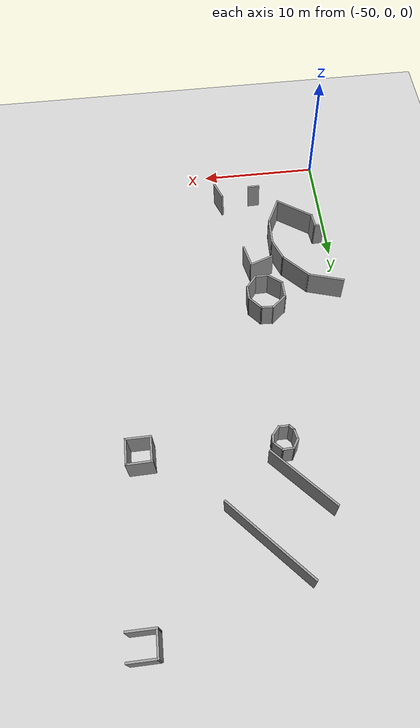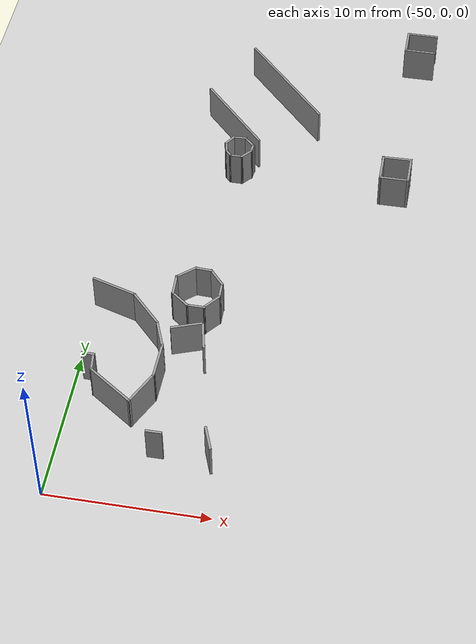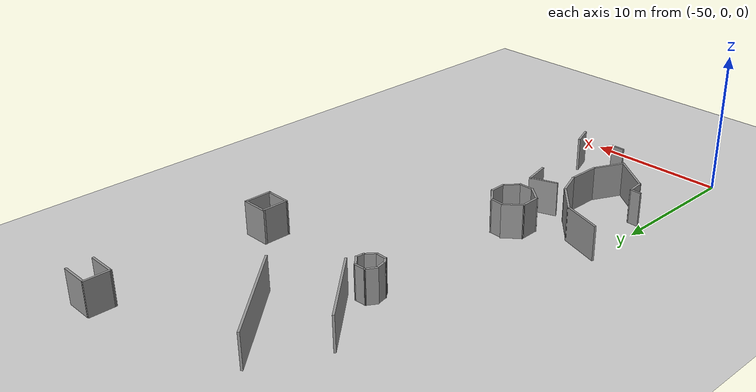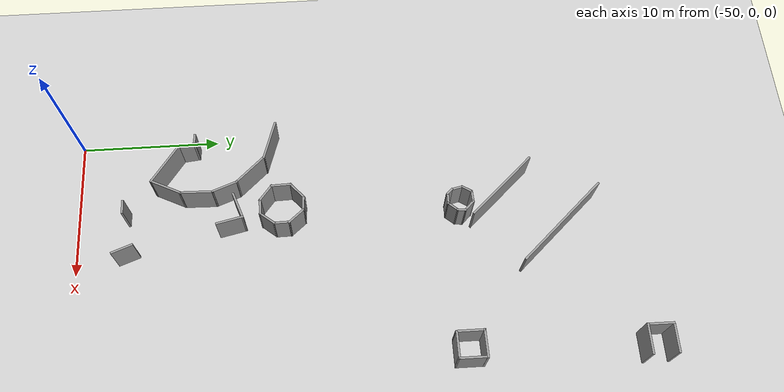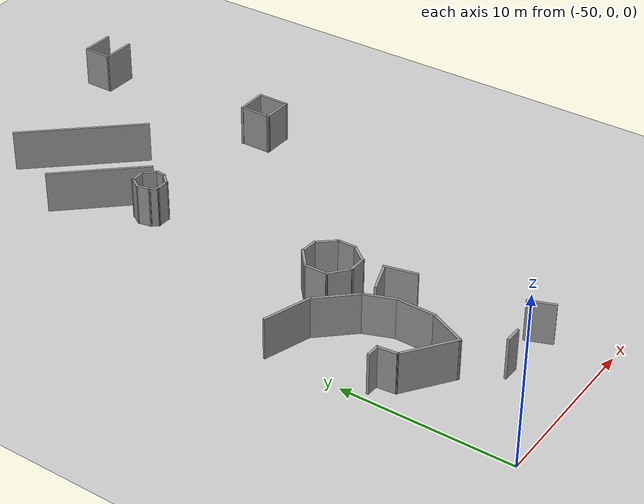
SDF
<sdf version="1.6">
 <world name="default">
  <model name="ground_plane">
   <static>1</static>
   <link name="link">
    <collision name="collision">
     <geometry><plane><normal>0 0 1</normal><size>100 100</size></plane></geometry>
     <surface><friction><ode><mu>100</mu><mu2>50</mu2></ode></friction></surface>
    </collision>
    <visual name="visual">
     <cast_shadows>0</cast_shadows>
     <geometry><plane><normal>0 0 1</normal><size>100 100</size></plane></geometry>
     <material>
      <script><uri>file://media/materials/scripts/gazebo.material</uri><name>Gazebo/Grey</name></script>
     </material>
    </visual>
   </link>
  </model>
  <model name="mall_new_reduce_size">
   <pose>-6.8092 7.5529 0 0 -0 0</pose>
   <link name="Wall_106">
    <collision name="Wall_106_Collision">
     <geometry><box><size>0.88293 0.15 2.5</size></box></geometry>
     <pose>0 0 1.25 0 -0 0</pose>
    </collision>
    <visual name="Wall_106_Visual">
     <pose>0 0 1.25 0 -0 0</pose>
     <geometry><box><size>0.88293 0.15 2.5</size></box></geometry>
     <material>
      <script><uri>file://media/materials/scripts/gazebo.material</uri><name>Gazebo/Grey</name></script>
      <ambient>1 1 1 1</ambient>
     </material>
     <meta><layer>0</layer></meta>
    </visual>
    <pose>-37.2247 20.3731 0 0 -0 1.00343</pose>
   </link>
   <link name="Wall_107">
    <collision name="Wall_107_Collision">
     <geometry><box><size>0.940533 0.15 2.5</size></box></geometry>
     <pose>0 0 1.25 0 -0 0</pose>
    </collision>
    <visual name="Wall_107_Visual">
     <pose>0 0 1.25 0 -0 0</pose>
     <geometry><box><size>0.940533 0.15 2.5</size></box></geometry>
     <material>
      <script><uri>file://media/materials/scripts/gazebo.material</uri><name>Gazebo/Grey</name></script>
      <ambient>1 1 1 1</ambient>
     </material>
     <meta><layer>0</layer></meta>
    </visual>
    <pose>-36.633 20.7072 0 0 -0 0.04939</pose>
   </link>
   <link name="Wall_108">
    <collision name="Wall_108_Collision">
     <geometry><box><size>1.04338 0.15 2.5</size></box></geometry>
     <pose>0 0 1.25 0 -0 0</pose>
    </collision>
    <visual name="Wall_108_Visual">
     <pose>0 0 1.25 0 -0 0</pose>
     <geometry><box><size>1.04338 0.15 2.5</size></box></geometry>
     <material>
      <script><uri>file://media/materials/scripts/gazebo.material</uri><name>Gazebo/Grey</name></script>
      <ambient>1 1 1 1</ambient>
     </material>
     <meta><layer>0</layer></meta>
    </visual>
    <pose>-35.9265 20.4122 0 0 -0 -0.780985</pose>
   </link>
   <link name="Wall_109">
    <collision name="Wall_109_Collision">
     <geometry><box><size>0.676427 0.15 2.5</size></box></geometry>
     <pose>0 0 1.25 0 -0 0</pose>
    </collision>
    <visual name="Wall_109_Visual">
     <pose>0 0 1.25 0 -0 0</pose>
     <geometry><box><size>0.676427 0.15 2.5</size></box></geometry>
     <material>
      <script><uri>file://media/materials/scripts/gazebo.material</uri><name>Gazebo/Grey</name></script>
      <ambient>1 1 1 1</ambient>
     </material>
     <meta><layer>0</layer></meta>
    </visual>
    <pose>-35.6455 19.8364 0 0 -0 -1.68757</pose>
   </link>
   <link name="Wall_110">
    <collision name="Wall_110_Collision">
     <geometry><box><size>0.945582 0.15 2.5</size></box></geometry>
     <pose>0 0 1.25 0 -0 0</pose>
    </collision>
    <visual name="Wall_110_Visual">
     <pose>0 0 1.25 0 -0 0</pose>
     <geometry><box><size>0.945582 0.15 2.5</size></box></geometry>
     <material>
      <script><uri>file://media/materials/scripts/gazebo.material</uri><name>Gazebo/Grey</name></script>
      <ambient>1 1 1 1</ambient>
     </material>
     <meta><layer>0</layer></meta>
    </visual>
    <pose>-35.9305 19.2738 0 0 -0 -2.28278</pose>
   </link>
   <link name="Wall_111">
    <collision name="Wall_111_Collision">
     <geometry><box><size>0.906136 0.15 2.5</size></box></geometry>
     <pose>0 0 1.25 0 -0 0</pose>
    </collision>
    <visual name="Wall_111_Visual">
     <pose>0 0 1.25 0 -0 0</pose>
     <geometry><box><size>0.906136 0.15 2.5</size></box></geometry>
     <material>
      <script><uri>file://media/materials/scripts/gazebo.material</uri><name>Gazebo/Grey</name></script>
      <ambient>1 1 1 1</ambient>
     </material>
     <meta><layer>0</layer></meta>
    </visual>
    <pose>-36.5684 18.981 0 0 -0 3.13422</pose>
   </link>
   <link name="Wall_112">
    <collision name="Wall_112_Collision">
     <geometry><box><size>0.599997 0.15 2.5</size></box></geometry>
     <pose>0 0 1.25 0 -0 0</pose>
    </collision>
    <visual name="Wall_112_Visual">
     <pose>0 0 1.25 0 -0 0</pose>
     <geometry><box><size>0.599997 0.15 2.5</size></box></geometry>
     <material>
      <script><uri>file://media/materials/scripts/gazebo.material</uri><name>Gazebo/Grey</name></script>
      <ambient>1 1 1 1</ambient>
     </material>
     <meta><layer>0</layer></meta>
    </visual>
    <pose>-37.1032 19.1505 0 0 -0 2.30701</pose>
   </link>
   <link name="Wall_116">
    <collision name="Wall_116_Collision">
     <geometry><box><size>0.795039 0.15 2.5</size></box></geometry>
     <pose>0 0 1.25 0 -0 0</pose>
    </collision>
    <visual name="Wall_116_Visual">
     <pose>0 0 1.25 0 -0 0</pose>
     <geometry><box><size>0.795039 0.15 2.5</size></box></geometry>
     <material>
      <script><uri>file://media/materials/scripts/gazebo.material</uri><name>Gazebo/Grey</name></script>
      <ambient>1 1 1 1</ambient>
     </material>
     <meta><layer>0</layer></meta>
    </visual>
    <pose>-37.3234 19.6378 0 0 -0 1.78689</pose>
   </link>
   <link name="Wall_120">
    <collision name="Wall_120_Collision">
     <geometry><box><size>2 0.15 2.5</size></box></geometry>
     <pose>0 0 1.25 0 -0 0</pose>
    </collision>
    <visual name="Wall_120_Visual">
     <pose>0 0 1.25 0 -0 0</pose>
     <geometry><box><size>2 0.15 2.5</size></box></geometry>
     <material>
      <script><uri>file://media/materials/scripts/gazebo.material</uri><name>Gazebo/Grey</name></script>
      <ambient>1 1 1 1</ambient>
     </material>
     <meta><layer>0</layer></meta>
    </visual>
    <pose>-26.9558 19.541 0 0 -0 -1.5708</pose>
   </link>
   <link name="Wall_121">
    <collision name="Wall_121_Collision">
     <geometry><box><size>1.9668 0.15 2.5</size></box></geometry>
     <pose>0 0 1.25 0 -0 0</pose>
    </collision>
    <visual name="Wall_121_Visual">
     <pose>0 0 1.25 0 -0 0</pose>
     <geometry><box><size>1.9668 0.15 2.5</size></box></geometry>
     <material>
      <script><uri>file://media/materials/scripts/gazebo.material</uri><name>Gazebo/Grey</name></script>
      <ambient>1 1 1 1</ambient>
     </material>
     <meta><layer>0</layer></meta>
    </visual>
    <pose>-26.0474 18.619 0 0 -0 0.003382</pose>
   </link>
   <link name="Wall_122">
    <collision name="Wall_122_Collision">
     <geometry><box><size>2.02653 0.15 2.5</size></box></geometry>
     <pose>0 0 1.25 0 -0 0</pose>
    </collision>
    <visual name="Wall_122_Visual">
     <pose>0 0 1.25 0 -0 0</pose>
     <geometry><box><size>2.02653 0.15 2.5</size></box></geometry>
     <material>
      <script><uri>file://media/materials/scripts/gazebo.material</uri><name>Gazebo/Grey</name></script>
      <ambient>1 1 1 1</ambient>
     </material>
     <meta><layer>0</layer></meta>
    </visual>
    <pose>-25.1383 19.554 0 0 -0 1.57003</pose>
   </link>
   <link name="Wall_123">
    <collision name="Wall_123_Collision">
     <geometry><box><size>1.99983 0.15 2.5</size></box></geometry>
     <pose>0 0 1.25 0 -0 0</pose>
    </collision>
    <visual name="Wall_123_Visual">
     <pose>0 0 1.25 0 -0 0</pose>
     <geometry><box><size>1.99983 0.15 2.5</size></box></geometry>
     <material>
      <script><uri>file://media/materials/scripts/gazebo.material</uri><name>Gazebo/Grey</name></script>
      <ambient>1 1 1 1</ambient>
     </material>
     <meta><layer>0</layer></meta>
    </visual>
    <pose>-26.056 20.4954 0 0 -0 -3.12426</pose>
   </link>
   <link name="Wall_17">
    <collision name="Wall_17_Collision">
     <geometry><box><size>6.11812 0.15 2.5</size></box></geometry>
     <pose>0 0 1.25 0 -0 0</pose>
    </collision>
    <visual name="Wall_17_Visual">
     <pose>0 0 1.25 0 -0 0</pose>
     <geometry><box><size>6.11812 0.15 2.5</size></box></geometry>
     <material>
      <script><uri>file://media/materials/scripts/gazebo.material</uri><name>Gazebo/Grey</name></script>
      <ambient>1 1 1 1</ambient>
     </material>
     <meta><layer>0</layer></meta>
    </visual>
    <pose>-37.3721 22.8899 0 0 -0 -0.823537</pose>
   </link>
   <link name="Wall_23">
    <collision name="Wall_23_Collision">
     <geometry><box><size>8.04183 0.15 2.5</size></box></geometry>
     <pose>0 0 1.25 0 -0 0</pose>
    </collision>
    <visual name="Wall_23_Visual">
     <pose>0 0 1.25 0 -0 0</pose>
     <geometry><box><size>8.04183 0.15 2.5</size></box></geometry>
     <material>
      <script><uri>file://media/materials/scripts/gazebo.material</uri><name>Gazebo/Grey</name></script>
      <ambient>1 1 1 1</ambient>
     </material>
     <meta><layer>0</layer></meta>
    </visual>
    <pose>-34.4403 26.7968 0 0 -0 -0.828664</pose>
   </link>
   <link name="Wall_340">
    <collision name="Wall_340_Collision">
     <geometry><box><size>1.61603 0.15 2.5</size></box></geometry>
     <pose>0 0 1.25 0 -0 0</pose>
    </collision>
    <visual name="Wall_340_Visual">
     <pose>0 0 1.25 0 -0 0</pose>
     <geometry><box><size>1.61603 0.15 2.5</size></box></geometry>
     <material>
      <script><uri>file://media/materials/scripts/gazebo.material</uri><name>Gazebo/Grey</name></script>
      <ambient>1 1 1 1</ambient>
     </material>
     <meta><layer>0</layer></meta>
    </visual>
    <pose>-34.1129 -3.77256 0 0 -0 -1.20963</pose>
   </link>
   <link name="Wall_344">
    <collision name="Wall_344_Collision">
     <geometry><box><size>1 0.15 2.5</size></box></geometry>
     <pose>0 0 1.25 0 -0 0</pose>
    </collision>
    <visual name="Wall_344_Visual">
     <pose>0 0 1.25 0 -0 0</pose>
     <geometry><box><size>1 0.15 2.5</size></box></geometry>
     <material>
      <script><uri>file://media/materials/scripts/gazebo.material</uri><name>Gazebo/Grey</name></script>
      <ambient>1 1 1 1</ambient>
     </material>
     <meta><layer>0</layer></meta>
    </visual>
    <pose>-37.269 -3.87943 0 0 -0 0</pose>
   </link>
   <link name="Wall_354">
    <collision name="Wall_354_Collision">
     <geometry><box><size>2.05857 0.15 2.5</size></box></geometry>
     <pose>0 0 1.25 0 -0 0</pose>
    </collision>
    <visual name="Wall_354_Visual">
     <pose>0 0 1.25 0 -0 0</pose>
     <geometry><box><size>2.05857 0.15 2.5</size></box></geometry>
     <material>
      <script><uri>file://media/materials/scripts/gazebo.material</uri><name>Gazebo/Grey</name></script>
      <ambient>1 1 1 1</ambient>
     </material>
     <meta><layer>0</layer></meta>
    </visual>
    <pose>-36.9144 4.20159 0 0 -0 0.346103</pose>
   </link>
   <link name="Wall_355">
    <collision name="Wall_355_Collision">
     <geometry><box><size>1.98834 0.15 2.5</size></box></geometry>
     <pose>0 0 1.25 0 -0 0</pose>
    </collision>
    <visual name="Wall_355_Visual">
     <pose>0 0 1.25 0 -0 0</pose>
     <geometry><box><size>1.98834 0.15 2.5</size></box></geometry>
     <material>
      <script><uri>file://media/materials/scripts/gazebo.material</uri><name>Gazebo/Grey</name></script>
      <ambient>1 1 1 1</ambient>
     </material>
     <meta><layer>0</layer></meta>
    </visual>
    <pose>-35.8124 3.62071 0 0 -0 -1.34665</pose>
   </link>
   <link name="Wall_364">
    <collision name="Wall_364_Collision">
     <geometry><box><size>0.847899 0.15 2.5</size></box></geometry>
     <pose>0 0 1.25 0 -0 0</pose>
    </collision>
    <visual name="Wall_364_Visual">
     <pose>0 0 1.25 0 -0 0</pose>
     <geometry><box><size>0.847899 0.15 2.5</size></box></geometry>
     <material>
      <script><uri>file://media/materials/scripts/gazebo.material</uri><name>Gazebo/Grey</name></script>
      <ambient>1 1 1 1</ambient>
     </material>
     <meta><layer>0</layer></meta>
    </visual>
    <pose>-42.3118 1.09481 0 0 -0 -0.029209</pose>
   </link>
   <link name="Wall_365">
    <collision name="Wall_365_Collision">
     <geometry><box><size>1.27005 0.15 2.5</size></box></geometry>
     <pose>0 0 1.25 0 -0 0</pose>
    </collision>
    <visual name="Wall_365_Visual">
     <pose>0 0 1.25 0 -0 0</pose>
     <geometry><box><size>1.27005 0.15 2.5</size></box></geometry>
     <material>
      <script><uri>file://media/materials/scripts/gazebo.material</uri><name>Gazebo/Grey</name></script>
      <ambient>1 1 1 1</ambient>
     </material>
     <meta><layer>0</layer></meta>
    </visual>
    <pose>-41.9091 0.528067 0 0 -0 -1.45941</pose>
   </link>
   <link name="Wall_366">
    <collision name="Wall_366_Collision">
     <geometry><box><size>3.45516 0.15 2.5</size></box></geometry>
     <pose>0 0 1.25 0 -0 0</pose>
    </collision>
    <visual name="Wall_366_Visual">
     <pose>0 0 1.25 0 -0 0</pose>
     <geometry><box><size>3.45516 0.15 2.5</size></box></geometry>
     <material>
      <script><uri>file://media/materials/scripts/gazebo.material</uri><name>Gazebo/Grey</name></script>
      <ambient>1 1 1 1</ambient>
     </material>
     <meta><layer>0</layer></meta>
    </visual>
    <pose>-40.4877 -0.988988 0 0 -0 -0.613962</pose>
   </link>
   <link name="Wall_367">
    <collision name="Wall_367_Collision">
     <geometry><box><size>2.46444 0.15 2.5</size></box></geometry>
     <pose>0 0 1.25 0 -0 0</pose>
    </collision>
    <visual name="Wall_367_Visual">
     <pose>0 0 1.25 0 -0 0</pose>
     <geometry><box><size>2.46444 0.15 2.5</size></box></geometry>
     <material>
      <script><uri>file://media/materials/scripts/gazebo.material</uri><name>Gazebo/Grey</name></script>
      <ambient>1 1 1 1</ambient>
     </material>
     <meta><layer>0</layer></meta>
    </visual>
    <pose>-38.6407 -0.899676 0 0 -0 1.11954</pose>
   </link>
   <link name="Wall_368">
    <collision name="Wall_368_Collision">
     <geometry><box><size>2.43294 0.15 2.5</size></box></geometry>
     <pose>0 0 1.25 0 -0 0</pose>
    </collision>
    <visual name="Wall_368_Visual">
     <pose>0 0 1.25 0 -0 0</pose>
     <geometry><box><size>2.43294 0.15 2.5</size></box></geometry>
     <material>
      <script><uri>file://media/materials/scripts/gazebo.material</uri><name>Gazebo/Grey</name></script>
      <ambient>1 1 1 1</ambient>
     </material>
     <meta><layer>0</layer></meta>
    </visual>
    <pose>-38.1023 1.28298 0 0 -0 1.54864</pose>
   </link>
   <link name="Wall_369">
    <collision name="Wall_369_Collision">
     <geometry><box><size>1.98148 0.15 2.5</size></box></geometry>
     <pose>0 0 1.25 0 -0 0</pose>
    </collision>
    <visual name="Wall_369_Visual">
     <pose>0 0 1.25 0 -0 0</pose>
     <geometry><box><size>1.98148 0.15 2.5</size></box></geometry>
     <material>
      <script><uri>file://media/materials/scripts/gazebo.material</uri><name>Gazebo/Grey</name></script>
      <ambient>1 1 1 1</ambient>
     </material>
     <meta><layer>0</layer></meta>
    </visual>
    <pose>-38.4143 3.2789 0 0 -0 1.93811</pose>
   </link>
   <link name="Wall_370">
    <collision name="Wall_370_Collision">
     <geometry><box><size>2.80655 0.15 2.5</size></box></geometry>
     <pose>0 0 1.25 0 -0 0</pose>
    </collision>
    <visual name="Wall_370_Visual">
     <pose>0 0 1.25 0 -0 0</pose>
     <geometry><box><size>2.80655 0.15 2.5</size></box></geometry>
     <material>
      <script><uri>file://media/materials/scripts/gazebo.material</uri><name>Gazebo/Grey</name></script>
      <ambient>1 1 1 1</ambient>
     </material>
     <meta><layer>0</layer></meta>
    </visual>
    <pose>-39.6621 5.10061 0 0 -0 2.32612</pose>
   </link>
   <link name="Wall_372">
    <collision name="Wall_372_Collision">
     <geometry><box><size>3.01709 0.15 2.5</size></box></geometry>
     <pose>0 0 1.25 0 -0 0</pose>
    </collision>
    <visual name="Wall_372_Visual">
     <pose>0 0 1.25 0 -0 0</pose>
     <geometry><box><size>3.01709 0.15 2.5</size></box></geometry>
     <material>
      <script><uri>file://media/materials/scripts/gazebo.material</uri><name>Gazebo/Grey</name></script>
      <ambient>1 1 1 1</ambient>
     </material>
     <meta><layer>0</layer></meta>
    </visual>
    <pose>-41.9417 6.50761 0 0 -0 2.84045</pose>
   </link>
   <link name="Wall_38">
    <collision name="Wall_38_Collision">
     <geometry><box><size>1.87759 0.15 2.5</size></box></geometry>
     <pose>0 0 1.25 0 -0 0</pose>
    </collision>
    <visual name="Wall_38_Visual">
     <pose>0 0 1.25 0 -0 0</pose>
     <geometry><box><size>1.87759 0.15 2.5</size></box></geometry>
     <material>
      <script><uri>file://media/materials/scripts/gazebo.material</uri><name>Gazebo/Grey</name></script>
      <ambient>1 1 1 1</ambient>
     </material>
     <meta><layer>0</layer></meta>
    </visual>
    <pose>-26.693 32.1923 0 0 -0 -1.57586</pose>
   </link>
   <link name="Wall_381">
    <collision name="Wall_381_Collision">
     <geometry><box><size>1.0607 0.15 2.5</size></box></geometry>
     <pose>0 0 1.25 0 -0 0</pose>
    </collision>
    <visual name="Wall_381_Visual">
     <pose>0 0 1.25 0 -0 0</pose>
     <geometry><box><size>1.0607 0.15 2.5</size></box></geometry>
     <material>
      <script><uri>file://media/materials/scripts/gazebo.material</uri><name>Gazebo/Grey</name></script>
      <ambient>1 1 1 1</ambient>
     </material>
     <meta><layer>0</layer></meta>
    </visual>
    <pose>-36.7557 8.79735 0 0 -0 -0.048953</pose>
   </link>
   <link name="Wall_382">
    <collision name="Wall_382_Collision">
     <geometry><box><size>1.48403 0.15 2.5</size></box></geometry>
     <pose>0 0 1.25 0 -0 0</pose>
    </collision>
    <visual name="Wall_382_Visual">
     <pose>0 0 1.25 0 -0 0</pose>
     <geometry><box><size>1.48403 0.15 2.5</size></box></geometry>
     <material>
      <script><uri>file://media/materials/scripts/gazebo.material</uri><name>Gazebo/Grey</name></script>
      <ambient>1 1 1 1</ambient>
     </material>
     <meta><layer>0</layer></meta>
    </visual>
    <pose>-35.8638 8.28201 0 0 -0 -0.857017</pose>
   </link>
   <link name="Wall_383">
    <collision name="Wall_383_Collision">
     <geometry><box><size>1.20072 0.15 2.5</size></box></geometry>
     <pose>0 0 1.25 0 -0 0</pose>
    </collision>
    <visual name="Wall_383_Visual">
     <pose>0 0 1.25 0 -0 0</pose>
     <geometry><box><size>1.20072 0.15 2.5</size></box></geometry>
     <material>
      <script><uri>file://media/materials/scripts/gazebo.material</uri><name>Gazebo/Grey</name></script>
      <ambient>1 1 1 1</ambient>
     </material>
     <meta><layer>0</layer></meta>
    </visual>
    <pose>-35.4271 7.25246 0 0 -0 -1.54957</pose>
   </link>
   <link name="Wall_384">
    <collision name="Wall_384_Collision">
     <geometry><box><size>1.37998 0.15 2.5</size></box></geometry>
     <pose>0 0 1.25 0 -0 0</pose>
    </collision>
    <visual name="Wall_384_Visual">
     <pose>0 0 1.25 0 -0 0</pose>
     <geometry><box><size>1.37998 0.15 2.5</size></box></geometry>
     <material>
      <script><uri>file://media/materials/scripts/gazebo.material</uri><name>Gazebo/Grey</name></script>
      <ambient>1 1 1 1</ambient>
     </material>
     <meta><layer>0</layer></meta>
    </visual>
    <pose>-35.8104 6.24615 0 0 -0 -2.24365</pose>
   </link>
   <link name="Wall_385">
    <collision name="Wall_385_Collision">
     <geometry><box><size>1.17938 0.15 2.5</size></box></geometry>
     <pose>0 0 1.25 0 -0 0</pose>
    </collision>
    <visual name="Wall_385_Visual">
     <pose>0 0 1.25 0 -0 0</pose>
     <geometry><box><size>1.17938 0.15 2.5</size></box></geometry>
     <material>
      <script><uri>file://media/materials/scripts/gazebo.material</uri><name>Gazebo/Grey</name></script>
      <ambient>1 1 1 1</ambient>
     </material>
     <meta><layer>0</layer></meta>
    </visual>
    <pose>-36.6967 5.7652 0 0 -0 3.14159</pose>
   </link>
   <link name="Wall_386">
    <collision name="Wall_386_Collision">
     <geometry><box><size>1.51794 0.15 2.5</size></box></geometry>
     <pose>0 0 1.25 0 -0 0</pose>
    </collision>
    <visual name="Wall_386_Visual">
     <pose>0 0 1.25 0 -0 0</pose>
     <geometry><box><size>1.51794 0.15 2.5</size></box></geometry>
     <material>
      <script><uri>file://media/materials/scripts/gazebo.material</uri><name>Gazebo/Grey</name></script>
      <ambient>1 1 1 1</ambient>
     </material>
     <meta><layer>0</layer></meta>
    </visual>
    <pose>-37.7496 6.17559 0 0 -0 2.47754</pose>
   </link>
   <link name="Wall_387">
    <collision name="Wall_387_Collision">
     <geometry><box><size>1.49648 0.15 2.5</size></box></geometry>
     <pose>0 0 1.25 0 -0 0</pose>
    </collision>
    <visual name="Wall_387_Visual">
     <pose>0 0 1.25 0 -0 0</pose>
     <geometry><box><size>1.49648 0.15 2.5</size></box></geometry>
     <material>
      <script><uri>file://media/materials/scripts/gazebo.material</uri><name>Gazebo/Grey</name></script>
      <ambient>1 1 1 1</ambient>
     </material>
     <meta><layer>0</layer></meta>
    </visual>
    <pose>-38.2994 7.2698 0 0 -0 1.60394</pose>
   </link>
   <link name="Wall_388">
    <collision name="Wall_388_Collision">
     <geometry><box><size>1.55734 0.15 2.5</size></box></geometry>
     <pose>0 0 1.25 0 -0 0</pose>
    </collision>
    <visual name="Wall_388_Visual">
     <pose>0 0 1.25 0 -0 0</pose>
     <geometry><box><size>1.55734 0.15 2.5</size></box></geometry>
     <material>
      <script><uri>file://media/materials/scripts/gazebo.material</uri><name>Gazebo/Grey</name></script>
      <ambient>1 1 1 1</ambient>
     </material>
     <meta><layer>0</layer></meta>
    </visual>
    <pose>-37.7894 8.39163 0 0 -0 0.713085</pose>
   </link>
   <link name="Wall_40">
    <collision name="Wall_40_Collision">
     <geometry><box><size>2.12677 0.15 2.5</size></box></geometry>
     <pose>0 0 1.25 0 -0 0</pose>
    </collision>
    <visual name="Wall_40_Visual">
     <pose>0 0 1.25 0 -0 0</pose>
     <geometry><box><size>2.12677 0.15 2.5</size></box></geometry>
     <material>
      <script><uri>file://media/materials/scripts/gazebo.material</uri><name>Gazebo/Grey</name></script>
      <ambient>1 1 1 1</ambient>
     </material>
     <meta><layer>0</layer></meta>
    </visual>
    <pose>-25.709 31.3193 0 0 -0 -0.000501</pose>
   </link>
   <link name="Wall_43">
    <collision name="Wall_43_Collision">
     <geometry><box><size>2 0.15 2.5</size></box></geometry>
     <pose>0 0 1.25 0 -0 0</pose>
    </collision>
    <visual name="Wall_43_Visual">
     <pose>0 0 1.25 0 -0 0</pose>
     <geometry><box><size>2 0.15 2.5</size></box></geometry>
     <material>
      <script><uri>file://media/materials/scripts/gazebo.material</uri><name>Gazebo/Grey</name></script>
      <ambient>1 1 1 1</ambient>
     </material>
     <meta><layer>0</layer></meta>
    </visual>
    <pose>-25.646 33.0752 0 0 -0 3.14159</pose>
   </link>
   <static>1</static>
  </model>
 </world>
</sdf>
